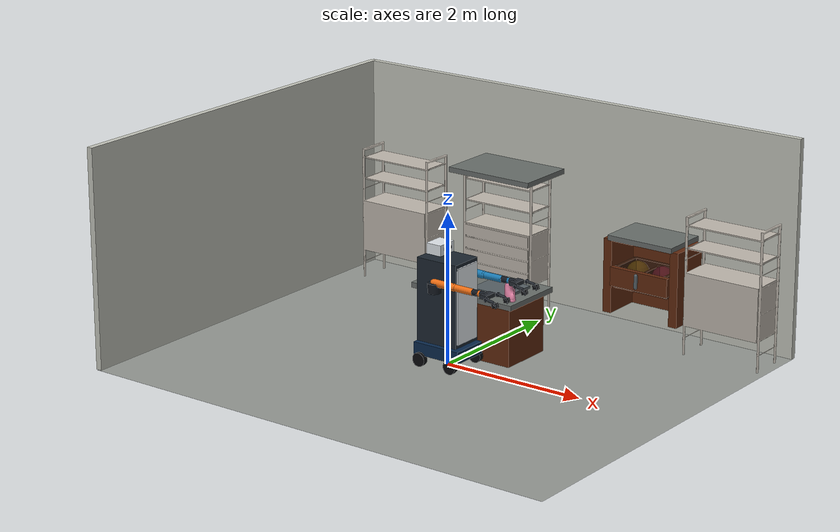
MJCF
<mujoco model="hwr_kitchen_v1">
  <compiler angle="radian" autolimits="true" inertiafromgeom="true" meshdir="../../household_v1" texturedir="../../household_v1"/>
  <option timestep="0.002" gravity="0 0 -9.81" integrator="implicitfast"><flag multiccd="enable"/></option>
  <size memory="160M"/>
  <visual>
    <global offwidth="960" offheight="640"/>
    <quality shadowsize="4096"/>
    <headlight ambient="0.20 0.20 0.19" diffuse="0.52 0.51 0.48" specular="0.22 0.22 0.22"/>
  </visual>
  <asset>
    <include file="../common/robot_assets.xml"/>
    <texture name="kitchen_floor_tex" type="2d" builtin="checker" width="1024" height="1024" rgb1="0.74 0.73 0.68" rgb2="0.42 0.46 0.47" mark="edge" markrgb="0.18 0.19 0.19"/>
    <texture name="kitchen_wall_tex" type="2d" builtin="checker" width="512" height="512" rgb1="0.84 0.82 0.75" rgb2="0.70 0.73 0.72"/>
    <texture name="counter_tex" type="2d" builtin="gradient" width="512" height="512" rgb1="0.65 0.66 0.63" rgb2="0.17 0.20 0.21" mark="random" markrgb="0.88 0.86 0.79"/>
    <material name="kitchen_floor" texture="kitchen_floor_tex" texrepeat="18 14" reflectance="0.12" roughness="0.50"/>
    <material name="kitchen_wall" texture="kitchen_wall_tex" texrepeat="9 7" roughness="0.82"/>
    <material name="counter_mat" texture="counter_tex" texrepeat="4 2" reflectance="0.18" roughness="0.30"/>
    <material name="drawer_wood" rgba="0.38 0.16 0.055 1" roughness="0.46"/>
    <material name="drawer_inside" rgba="0.22 0.10 0.035 1" roughness="0.60"/>
    <material name="steel" rgba="0.34 0.38 0.40 1" metallic="0.82" roughness="0.22"/>
    <mesh name="kitchen_cabinet_mesh" file="kitchen_cabinet/kitchen_cabinet.obj"/>
    <texture name="kitchen_cabinet_tex" type="2d" file="kitchen_cabinet/drawer_cabinet.png"/>
    <material name="kitchen_cabinet_mat" texture="kitchen_cabinet_tex" roughness="0.49"/>
    <mesh name="cleaner_yellow_mesh" file="cleaner_yellow/cleaner_yellow.obj"/>
    <texture name="cleaner_yellow_tex" type="2d" file="cleaner_yellow/multi_cleaner_bottle.png"/>
    <material name="cleaner_yellow_mat" texture="cleaner_yellow_tex" roughness="0.40"/>
    <mesh name="cleaner_pink_mesh" file="cleaner_pink/cleaner_pink.obj"/>
    <texture name="cleaner_pink_tex" type="2d" file="cleaner_pink/all_purpose_cleaner.png"/>
    <material name="cleaner_pink_mat" texture="cleaner_pink_tex" roughness="0.38"/>
  </asset>
  <default><include file="../common/robot_defaults.xml"/></default>
  <worldbody>
    <geom name="floor" type="plane" size="3.4 2.8 0.1" material="kitchen_floor" friction="0.92 0.01 0.001"/>
    <geom name="wall_north" type="box" pos="0 2.78 1.45" size="3.4 0.04 1.45" material="kitchen_wall"/>
    <geom name="wall_west" type="box" pos="-3.38 0 1.45" size="0.04 2.8 1.45" material="kitchen_wall"/>
    <light name="kitchen_key" pos="0 -0.4 3.7" dir="0 0.2 -1" directional="true" castshadow="true" diffuse="0.86 0.84 0.77"/>
    <light name="kitchen_window" pos="-2.8 -1.6 2.3" dir="0.7 0.5 -0.5" directional="true" castshadow="true" diffuse="0.45 0.63 0.83"/>
    <light name="kitchen_task" pos="1.9 1.4 2.35" diffuse="0.82 0.68 0.48" castshadow="true"/>
    <camera name="third_person" pos="5.1 -5.4 3.8" xyaxes="0.727 0.687 0 -0.362 0.383 0.850" fovy="46"/>
    <camera name="room_overview" pos="0 0 6.5" xyaxes="1 0 0 0 1 0" fovy="54"/>
    <include file="../common/robot_body.xml"/>
    <body name="cabinet_main" pos="2.75 2.28 0" euler="0 0 3.14159">
      <geom name="cabinet_main_visual" type="mesh" mesh="kitchen_cabinet_mesh" material="kitchen_cabinet_mat" contype="0" conaffinity="0" group="1"/>
      <geom name="cabinet_main_collision" type="box" pos="0 0 0.90" size="0.54 0.22 0.90" rgba="0 0 0 0" group="3"/>
    </body>
    <body name="cabinet_left" pos="-2.45 2.28 0" euler="0 0 3.14159">
      <geom name="cabinet_left_visual" type="mesh" mesh="kitchen_cabinet_mesh" material="kitchen_cabinet_mat" contype="0" conaffinity="0" group="1"/>
      <geom name="cabinet_left_collision" type="box" pos="0 0 0.90" size="0.54 0.22 0.90" rgba="0 0 0 0" group="3"/>
    </body>
    <body name="counter_bank" pos="-0.75 2.32 0">
      <geom name="counter_bank_visual" type="mesh" mesh="kitchen_cabinet_mesh" material="kitchen_cabinet_mat" contype="0" conaffinity="0" group="1"/>
      <geom name="counter_bank_collision" type="box" pos="0 0 0.90" size="0.54 0.22 0.90" rgba="0 0 0 0" group="3"/>
      <geom name="counter_worktop" type="box" pos="0 -0.02 1.875" size="0.64 0.42 0.035" material="counter_mat"/>
    </body>
    <body name="island" pos="0.00 0.72 0">
      <geom name="island_base" type="box" pos="0 0 0.40" size="0.70 0.38 0.40" material="drawer_wood"/>
      <geom name="island_worktop" type="box" pos="0 0 0.825" size="0.78 0.46 0.035" material="counter_mat"/>
      <geom name="island_sink" type="box" pos="0.30 0 0.875" size="0.28 0.25 0.02" material="steel"/>
    </body>
    <body name="kitchen_drawer_frame" pos="1.55 2.32 0">
      <geom name="drawer_frame_left" type="box" pos="-0.50 0 0.84" size="0.06 0.29 0.50" material="drawer_wood"/>
      <geom name="drawer_frame_right" type="box" pos="0.50 0 0.84" size="0.06 0.29 0.50" material="drawer_wood"/>
      <geom name="drawer_frame_top" type="box" pos="0 0 1.37" size="0.48 0.33 0.035" material="counter_mat"/>
      <geom name="drawer_frame_back" type="box" pos="0 0.27 0.84" size="0.48 0.035 0.50" material="drawer_wood"/>
      <body name="kitchen_drawer" pos="0 0 0.86">
        <joint name="kitchen_drawer_slide" type="slide" axis="0 -1 0" range="0 0.42" damping="15" frictionloss="4.0"/>
        <geom name="drawer_bottom" type="box" pos="0 -0.04 -0.13" size="0.39 0.25 0.025" material="drawer_inside"/>
        <geom name="drawer_front" type="box" pos="0 -0.30 0" size="0.43 0.035 0.125" material="drawer_wood"/>
        <geom name="drawer_back" type="box" pos="0 0.18 -0.02" size="0.39 0.025 0.15" material="drawer_inside"/>
        <geom name="drawer_left" type="box" pos="-0.37 -0.04 -0.02" size="0.025 0.22 0.15" material="drawer_inside"/>
        <geom name="drawer_right" type="box" pos="0.37 -0.04 -0.02" size="0.025 0.22 0.15" material="drawer_inside"/>
        <geom name="drawer_divider" type="box" pos="0 -0.04 -0.03" size="0.018 0.21 0.12" material="drawer_inside"/>
        <geom name="drawer_handle_visual" type="capsule" fromto="0 -0.39 -0.06 0 -0.39 0.10" size="0.025" material="steel" contype="0" conaffinity="0" group="1"/>
        <geom name="drawer_handle" type="capsule" fromto="0 -0.39 -0.06 0 -0.39 0.10" size="0.040" friction="2.4 0.04 0.004" rgba="0 0 0 0" group="3"/>
        <site name="yellow_target_volume" pos="-0.19 -0.04 0.02" size="0.15 0.17 0.12" rgba="1 0.8 0.1 0.09"/>
        <site name="pink_target_volume" pos="0.19 -0.04 0.02" size="0.15 0.17 0.12" rgba="1 0.2 0.5 0.09"/>
      </body>
    </body>
    <body name="cleaner_yellow" pos="-0.42 0.42 0.86">
      <freejoint name="cleaner_yellow_free"/>
      <geom name="cleaner_yellow_visual" type="mesh" mesh="cleaner_yellow_mesh" material="cleaner_yellow_mat" mass="0" contype="0" conaffinity="0" group="1"/>
      <geom name="cleaner_yellow_collision" type="cylinder" pos="0 0 0.120" size="0.043 0.120" mass="0.32" friction="1.35 0.02 0.002" rgba="0 0 0 0" group="3"/>
    </body>
    <body name="cleaner_pink" pos="0.66 0.42 0.86">
      <freejoint name="cleaner_pink_free"/>
      <geom name="cleaner_pink_visual" type="mesh" mesh="cleaner_pink_mesh" material="cleaner_pink_mat" mass="0" contype="0" conaffinity="0" group="1"/>
      <geom name="cleaner_pink_collision" type="box" pos="0 0 0.120" size="0.064 0.047 0.120" mass="0.48" friction="1.30 0.02 0.002" rgba="0 0 0 0" group="3"/>
    </body>
  </worldbody>
  <contact>
    <include file="../common/robot_contacts.xml"/>
    <pair geom1="right_gripper_left_pad" geom2="cleaner_yellow_collision" condim="4" friction="3 3 0.04 0.004 0.004" solref="0.001 1" solimp="0.99 0.999 0.0001"/>
    <pair geom1="right_gripper_right_pad" geom2="cleaner_yellow_collision" condim="4" friction="3 3 0.04 0.004 0.004" solref="0.001 1" solimp="0.99 0.999 0.0001"/>
    <pair geom1="right_gripper_left_pad" geom2="cleaner_pink_collision" condim="4" friction="3 3 0.04 0.004 0.004" solref="0.001 1" solimp="0.99 0.999 0.0001"/>
    <pair geom1="right_gripper_right_pad" geom2="cleaner_pink_collision" condim="4" friction="3 3 0.04 0.004 0.004" solref="0.001 1" solimp="0.99 0.999 0.0001"/>
    <pair geom1="right_gripper_left_pad" geom2="drawer_handle" condim="4" friction="3 3 0.04 0.004 0.004" solref="0.001 1" solimp="0.99 0.999 0.0001"/>
    <pair geom1="right_gripper_right_pad" geom2="drawer_handle" condim="4" friction="3 3 0.04 0.004 0.004" solref="0.001 1" solimp="0.99 0.999 0.0001"/>
  </contact>
  <actuator><include file="../common/robot_actuators.xml"/></actuator>
  <sensor><include file="../common/robot_sensors.xml"/></sensor>
</mujoco>

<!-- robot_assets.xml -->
<mujocoinclude>
  <material name="chassis_material" rgba="0.035 0.16 0.30 1" metallic="0.3" roughness="0.28"/>
  <material name="body_material" rgba="0.11 0.15 0.19 1" metallic="0.22" roughness="0.34"/>
  <material name="panel_material" rgba="0.92 0.94 0.96 1" metallic="0.08" roughness="0.28"/>
  <material name="arm_material" rgba="0.93 0.43 0.08 1" metallic="0.18" roughness="0.28"/>
  <material name="arm_secondary_material" rgba="0.10 0.48 0.70 1" metallic="0.18" roughness="0.28"/>
  <material name="joint_material" rgba="0.08 0.10 0.13 1" metallic="0.65" roughness="0.24"/>
  <material name="gripper_material" rgba="0.15 0.17 0.20 1" metallic="0.28" roughness="0.48"/>
  <material name="gripper_pad_material" rgba="0.035 0.045 0.055 1" metallic="0.02" roughness="0.86"/>
  <material name="wheel_material" rgba="0.035 0.04 0.05 1" metallic="0.05" roughness="0.72"/>
  <material name="camera_material" rgba="0.88 0.90 0.92 1" metallic="0.16" roughness="0.26"/>
  <material name="camera_lens_material" rgba="0.015 0.035 0.06 1" metallic="0.38" roughness="0.12"/>
</mujocoinclude>

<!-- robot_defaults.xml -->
<mujocoinclude>
  <joint damping="1.0" armature="0.02" frictionloss="0.05"/>
  <geom condim="4" friction="0.9 0.01 0.001" solref="0.006 1" solimp="0.9 0.95 0.001"/>
  <default class="arm_joint">
    <joint damping="2.0" armature="0.05"/>
  </default>
  <default class="finger_joint">
    <joint damping="3.0" armature="0.01"/>
  </default>
  <default class="finger_pad">
    <geom condim="4" friction="3.0 0.04 0.004" solref="0.004 1"/>
  </default>
</mujocoinclude>

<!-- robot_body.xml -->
<mujocoinclude>
  <body name="robot_base" pos="0 0 0.22">
    <freejoint name="base_free"/>
    <geom name="chassis_collision" type="box" size="0.34 0.26 0.08" density="400"
          material="chassis_material"/>
    <geom name="body_box_collision" type="box" pos="-0.01 0 0.65" size="0.30 0.23 0.55"
          density="65" material="body_material"/>
    <geom name="body_front_panel" type="box" pos="0.295 0 0.65" size="0.012 0.20 0.50"
          mass="0.05" contype="0" conaffinity="0" material="panel_material"/>
    <geom name="bumper_front" type="capsule" fromto="0.34 -0.21 0 0.34 0.21 0" size="0.035"
          density="300" material="joint_material"/>
    <site name="base_imu" pos="0 0 0.12" size="0.012" rgba="0 1 0 0"/>

    <body name="top_camera_head" pos="-0.12 0 1.31">
      <geom name="camera_head_pedestal" type="box" pos="0 0 -0.09" size="0.045 0.050 0.040"
            density="220" material="joint_material"/>
      <geom name="camera_head_housing" type="box" size="0.11 0.14 0.07" density="180"
            material="camera_material"/>
      <geom name="camera_rgb_lens" type="cylinder" pos="0.118 -0.045 0.01" size="0.026 0.012"
            quat="0.707107 0 0.707107 0" mass="0.02" contype="0" conaffinity="0"
            material="camera_lens_material"/>
      <geom name="camera_depth_lens" type="cylinder" pos="0.118 0.045 0.01" size="0.026 0.012"
            quat="0.707107 0 0.707107 0" mass="0.02" contype="0" conaffinity="0"
            material="camera_lens_material"/>
      <camera name="head_rgb" pos="0.13 -0.045 0.01" xyaxes="0 -1 0 0.16 0 0.987" fovy="66"/>
      <camera name="head_depth" pos="0.13 0.045 0.01" xyaxes="0 -1 0 0.16 0 0.987" fovy="66"/>
    </body>

    <body name="wheel_front_left" pos="0.24 0.27 -0.13">
      <joint name="wheel_front_left_joint" type="hinge" axis="0 1 0" limited="false" damping="0.15"/>
      <geom name="wheel_front_left_geom" type="cylinder" size="0.09 0.035"
            quat="0.707107 0.707107 0 0" density="450" material="wheel_material"
            friction="1.3 0.003 0.0002"/>
    </body>
    <body name="wheel_rear_left" pos="-0.24 0.27 -0.13">
      <joint name="wheel_rear_left_joint" type="hinge" axis="0 1 0" limited="false" damping="0.15"/>
      <geom name="wheel_rear_left_geom" type="cylinder" size="0.09 0.035"
            quat="0.707107 0.707107 0 0" density="450" material="wheel_material"
            friction="1.3 0.003 0.0002"/>
    </body>
    <body name="wheel_front_right" pos="0.24 -0.27 -0.13">
      <joint name="wheel_front_right_joint" type="hinge" axis="0 1 0" limited="false" damping="0.15"/>
      <geom name="wheel_front_right_geom" type="cylinder" size="0.09 0.035"
            quat="0.707107 0.707107 0 0" density="450" material="wheel_material"
            friction="1.3 0.003 0.0002"/>
    </body>
    <body name="wheel_rear_right" pos="-0.24 -0.27 -0.13">
      <joint name="wheel_rear_right_joint" type="hinge" axis="0 1 0" limited="false" damping="0.15"/>
      <geom name="wheel_rear_right_geom" type="cylinder" size="0.09 0.035"
            quat="0.707107 0.707107 0 0" density="450" material="wheel_material"
            friction="1.3 0.003 0.0002"/>
    </body>

    <body name="right_shoulder_pan_link" pos="0.02 -0.31 0.82" gravcomp="1">
      <joint name="right_arm_joint_1" class="arm_joint" type="hinge" axis="0 0 1" range="-3.05 3.05"/>
      <geom type="cylinder" size="0.085 0.065" pos="0 0 0.065" density="620" material="joint_material"/>
      <body name="right_upper_arm_link" pos="0 0 0.13" gravcomp="1">
        <joint name="right_arm_joint_2" class="arm_joint" type="hinge" axis="0 1 0" range="-1.75 1.45"/>
        <geom type="capsule" fromto="0 0 0 0.31 0 0" size="0.050" density="560" material="arm_material"/>
        <body name="right_forearm_link" pos="0.31 0 0" gravcomp="1">
          <joint name="right_arm_joint_3" class="arm_joint" type="hinge" axis="0 1 0" range="-2.55 2.55"/>
          <geom type="capsule" fromto="0 0 0 0.27 0 0" size="0.044" density="520" material="arm_material"/>
          <body name="right_wrist_roll_link" pos="0.27 0 0" gravcomp="1">
            <joint name="right_arm_joint_4" class="arm_joint" type="hinge" axis="1 0 0" range="-3.05 3.05"/>
            <geom type="capsule" fromto="0 0 0 0.09 0 0" size="0.040" density="500" material="joint_material"/>
            <body name="right_wrist_pitch_link" pos="0.09 0 0" gravcomp="1">
              <joint name="right_arm_joint_5" class="arm_joint" type="hinge" axis="0 1 0" range="-2.10 2.10"/>
              <geom type="capsule" fromto="0 0 0 0.08 0 0" size="0.037" density="480" material="arm_material"/>
              <body name="right_wrist_yaw_link" pos="0.08 0 0" gravcomp="1">
                <joint name="right_arm_joint_6" class="arm_joint" type="hinge" axis="1 0 0" range="-3.05 3.05"/>
                <geom type="cylinder" size="0.041 0.035" quat="0.707107 0 0.707107 0"
                      density="470" material="joint_material"/>
                <body name="right_gripper_palm" pos="0.065 0 0" gravcomp="1">
                  <geom name="right_gripper_palm_shell" type="box" size="0.050 0.090 0.026"
                        density="470" material="gripper_material"/>
                  <geom name="right_gripper_wrist_adapter" type="cylinder" pos="-0.035 0 0"
                        size="0.038 0.025" quat="0.707107 0 0.707107 0"
                        density="420" material="joint_material"/>
                  <camera name="wrist_rgb" pos="0.012 0 0.060" xyaxes="0 -1 0 0 0 1" fovy="72"/>
                  <site name="right_grasp_center" pos="0.190 0 -0.045" size="0.012" rgba="0 1 0 0"/>
                  <body name="right_gripper_left_finger" pos="0.070 0.122 -0.005" gravcomp="1">
                    <joint name="right_gripper_left_finger_joint" class="finger_joint" type="slide"
                           axis="0 -1 0" range="0 0.095"/>
                    <geom name="right_gripper_left_knuckle" type="cylinder" size="0.026 0.018"
                          quat="0.707107 0.707107 0 0" density="390"
                          material="joint_material"/>
                    <geom name="right_gripper_left_proximal" type="capsule"
                          fromto="0 0 0 0.100 0 -0.012" size="0.018" density="360"
                          material="gripper_material"/>
                    <geom name="right_gripper_left_distal" type="capsule"
                          fromto="0.100 0 -0.012 0.145 0 -0.047" size="0.016" density="340"
                          material="gripper_material"/>
                    <geom name="right_gripper_left_tip" type="capsule"
                          fromto="0.145 0 -0.047 0.145 0 -0.075" size="0.014" density="330"
                          material="gripper_material"/>
                    <geom name="right_gripper_left_pad" class="finger_pad" type="box"
                          size="0.045 0.012 0.030" pos="0.133 0 -0.045" euler="0 -0.30 0"
                          density="400" material="gripper_pad_material"/>
                  </body>
                  <body name="right_gripper_right_finger" pos="0.070 -0.122 -0.005" gravcomp="1">
                    <joint name="right_gripper_right_finger_joint" class="finger_joint" type="slide"
                           axis="0 1 0" range="0 0.095"/>
                    <geom name="right_gripper_right_knuckle" type="cylinder" size="0.026 0.018"
                          quat="0.707107 0.707107 0 0" density="390"
                          material="joint_material"/>
                    <geom name="right_gripper_right_proximal" type="capsule"
                          fromto="0 0 0 0.100 0 -0.012" size="0.018" density="360"
                          material="gripper_material"/>
                    <geom name="right_gripper_right_distal" type="capsule"
                          fromto="0.100 0 -0.012 0.145 0 -0.047" size="0.016" density="340"
                          material="gripper_material"/>
                    <geom name="right_gripper_right_tip" type="capsule"
                          fromto="0.145 0 -0.047 0.145 0 -0.075" size="0.014" density="330"
                          material="gripper_material"/>
                    <geom name="right_gripper_right_pad" class="finger_pad" type="box"
                          size="0.045 0.012 0.030" pos="0.133 0 -0.045" euler="0 -0.30 0"
                          density="400" material="gripper_pad_material"/>
                  </body>
                </body>
              </body>
            </body>
          </body>
        </body>
      </body>
    </body>

    <body name="left_shoulder_pan_link" pos="0.02 0.31 0.82" gravcomp="1">
      <joint name="left_arm_joint_1" class="arm_joint" type="hinge" axis="0 0 1" range="-3.05 3.05"/>
      <geom type="cylinder" size="0.085 0.065" pos="0 0 0.065" density="620" material="joint_material"/>
      <body name="left_upper_arm_link" pos="0 0 0.13" gravcomp="1">
        <joint name="left_arm_joint_2" class="arm_joint" type="hinge" axis="0 1 0" range="-1.75 1.45"/>
        <geom type="capsule" fromto="0 0 0 0.31 0 0" size="0.050" density="560" material="arm_secondary_material"/>
        <body name="left_forearm_link" pos="0.31 0 0" gravcomp="1">
          <joint name="left_arm_joint_3" class="arm_joint" type="hinge" axis="0 1 0" range="-2.55 2.55"/>
          <geom type="capsule" fromto="0 0 0 0.27 0 0" size="0.044" density="520" material="arm_secondary_material"/>
          <body name="left_wrist_roll_link" pos="0.27 0 0" gravcomp="1">
            <joint name="left_arm_joint_4" class="arm_joint" type="hinge" axis="1 0 0" range="-3.05 3.05"/>
            <geom type="capsule" fromto="0 0 0 0.09 0 0" size="0.040" density="500" material="joint_material"/>
            <body name="left_wrist_pitch_link" pos="0.09 0 0" gravcomp="1">
              <joint name="left_arm_joint_5" class="arm_joint" type="hinge" axis="0 1 0" range="-2.10 2.10"/>
              <geom type="capsule" fromto="0 0 0 0.08 0 0" size="0.037" density="480" material="arm_secondary_material"/>
              <body name="left_wrist_yaw_link" pos="0.08 0 0" gravcomp="1">
                <joint name="left_arm_joint_6" class="arm_joint" type="hinge" axis="1 0 0" range="-3.05 3.05"/>
                <geom type="cylinder" size="0.041 0.035" quat="0.707107 0 0.707107 0"
                      density="470" material="joint_material"/>
                <body name="left_gripper_palm" pos="0.065 0 0" gravcomp="1">
                  <geom name="left_gripper_palm_shell" type="box" size="0.050 0.090 0.026"
                        density="470" material="gripper_material"/>
                  <geom name="left_gripper_wrist_adapter" type="cylinder" pos="-0.035 0 0"
                        size="0.038 0.025" quat="0.707107 0 0.707107 0"
                        density="420" material="joint_material"/>
                  <camera name="left_wrist_rgb" pos="0.012 0 0.060" xyaxes="0 -1 0 0 0 1" fovy="72"/>
                  <site name="left_grasp_center" pos="0.190 0 -0.045" size="0.012" rgba="0 1 0 0"/>
                  <body name="left_gripper_left_finger" pos="0.070 0.122 -0.005" gravcomp="1">
                    <joint name="left_gripper_left_finger_joint" class="finger_joint" type="slide"
                           axis="0 -1 0" range="0 0.095"/>
                    <geom name="left_gripper_left_knuckle" type="cylinder" size="0.026 0.018"
                          quat="0.707107 0.707107 0 0" density="390"
                          material="joint_material"/>
                    <geom name="left_gripper_left_proximal" type="capsule"
                          fromto="0 0 0 0.100 0 -0.012" size="0.018" density="360"
                          material="gripper_material"/>
                    <geom name="left_gripper_left_distal" type="capsule"
                          fromto="0.100 0 -0.012 0.145 0 -0.047" size="0.016" density="340"
                          material="gripper_material"/>
                    <geom name="left_gripper_left_tip" type="capsule"
                          fromto="0.145 0 -0.047 0.145 0 -0.075" size="0.014" density="330"
                          material="gripper_material"/>
                    <geom name="left_gripper_left_pad" class="finger_pad" type="box"
                          size="0.045 0.012 0.030" pos="0.133 0 -0.045" euler="0 -0.30 0"
                          density="400" material="gripper_pad_material"/>
                  </body>
                  <body name="left_gripper_right_finger" pos="0.070 -0.122 -0.005" gravcomp="1">
                    <joint name="left_gripper_right_finger_joint" class="finger_joint" type="slide"
                           axis="0 1 0" range="0 0.095"/>
                    <geom name="left_gripper_right_knuckle" type="cylinder" size="0.026 0.018"
                          quat="0.707107 0.707107 0 0" density="390"
                          material="joint_material"/>
                    <geom name="left_gripper_right_proximal" type="capsule"
                          fromto="0 0 0 0.100 0 -0.012" size="0.018" density="360"
                          material="gripper_material"/>
                    <geom name="left_gripper_right_distal" type="capsule"
                          fromto="0.100 0 -0.012 0.145 0 -0.047" size="0.016" density="340"
                          material="gripper_material"/>
                    <geom name="left_gripper_right_tip" type="capsule"
                          fromto="0.145 0 -0.047 0.145 0 -0.075" size="0.014" density="330"
                          material="gripper_material"/>
                    <geom name="left_gripper_right_pad" class="finger_pad" type="box"
                          size="0.045 0.012 0.030" pos="0.133 0 -0.045" euler="0 -0.30 0"
                          density="400" material="gripper_pad_material"/>
                  </body>
                </body>
              </body>
            </body>
          </body>
        </body>
      </body>
    </body>
  </body>
</mujocoinclude>

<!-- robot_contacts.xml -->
<mujocoinclude>
  <exclude body1="robot_base" body2="right_shoulder_pan_link"/>
  <exclude body1="right_shoulder_pan_link" body2="right_upper_arm_link"/>
  <exclude body1="right_upper_arm_link" body2="right_forearm_link"/>
  <exclude body1="right_forearm_link" body2="right_wrist_roll_link"/>
  <exclude body1="right_wrist_roll_link" body2="right_wrist_pitch_link"/>
  <exclude body1="right_wrist_pitch_link" body2="right_wrist_yaw_link"/>
  <exclude body1="right_wrist_yaw_link" body2="right_gripper_palm"/>
  <exclude body1="right_gripper_palm" body2="right_gripper_left_finger"/>
  <exclude body1="right_gripper_palm" body2="right_gripper_right_finger"/>
  <exclude body1="robot_base" body2="left_shoulder_pan_link"/>
  <exclude body1="left_shoulder_pan_link" body2="left_upper_arm_link"/>
  <exclude body1="left_upper_arm_link" body2="left_forearm_link"/>
  <exclude body1="left_forearm_link" body2="left_wrist_roll_link"/>
  <exclude body1="left_wrist_roll_link" body2="left_wrist_pitch_link"/>
  <exclude body1="left_wrist_pitch_link" body2="left_wrist_yaw_link"/>
  <exclude body1="left_wrist_yaw_link" body2="left_gripper_palm"/>
  <exclude body1="left_gripper_palm" body2="left_gripper_left_finger"/>
  <exclude body1="left_gripper_palm" body2="left_gripper_right_finger"/>
</mujocoinclude>

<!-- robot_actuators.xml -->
<mujocoinclude>
  <velocity name="wheel_front_left_velocity" joint="wheel_front_left_joint" kv="18" forcerange="-30 30"/>
  <velocity name="wheel_rear_left_velocity" joint="wheel_rear_left_joint" kv="18" forcerange="-30 30"/>
  <velocity name="wheel_front_right_velocity" joint="wheel_front_right_joint" kv="18" forcerange="-30 30"/>
  <velocity name="wheel_rear_right_velocity" joint="wheel_rear_right_joint" kv="18" forcerange="-30 30"/>
  <position name="right_arm_joint_1_position" joint="right_arm_joint_1" kp="180" kv="24" forcerange="-75 75"/>
  <position name="right_arm_joint_2_position" joint="right_arm_joint_2" kp="180" kv="24" forcerange="-75 75"/>
  <position name="right_arm_joint_3_position" joint="right_arm_joint_3" kp="160" kv="20" forcerange="-60 60"/>
  <position name="right_arm_joint_4_position" joint="right_arm_joint_4" kp="100" kv="14" forcerange="-35 35"/>
  <position name="right_arm_joint_5_position" joint="right_arm_joint_5" kp="90" kv="12" forcerange="-30 30"/>
  <position name="right_arm_joint_6_position" joint="right_arm_joint_6" kp="70" kv="10" forcerange="-22 22"/>
  <position name="left_arm_joint_1_position" joint="left_arm_joint_1" kp="180" kv="24" forcerange="-75 75"/>
  <position name="left_arm_joint_2_position" joint="left_arm_joint_2" kp="180" kv="24" forcerange="-75 75"/>
  <position name="left_arm_joint_3_position" joint="left_arm_joint_3" kp="160" kv="20" forcerange="-60 60"/>
  <position name="left_arm_joint_4_position" joint="left_arm_joint_4" kp="100" kv="14" forcerange="-35 35"/>
  <position name="left_arm_joint_5_position" joint="left_arm_joint_5" kp="90" kv="12" forcerange="-30 30"/>
  <position name="left_arm_joint_6_position" joint="left_arm_joint_6" kp="70" kv="10" forcerange="-22 22"/>
  <position name="right_gripper_left_finger_position" joint="right_gripper_left_finger_joint"
            kp="260" kv="14" forcerange="-35 35"/>
  <position name="right_gripper_right_finger_position" joint="right_gripper_right_finger_joint"
            kp="260" kv="14" forcerange="-35 35"/>
  <position name="left_gripper_left_finger_position" joint="left_gripper_left_finger_joint"
            kp="260" kv="14" forcerange="-35 35"/>
  <position name="left_gripper_right_finger_position" joint="left_gripper_right_finger_joint"
            kp="260" kv="14" forcerange="-35 35"/>
</mujocoinclude>

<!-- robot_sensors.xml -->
<mujocoinclude>
  <gyro name="base_gyro" site="base_imu"/>
  <accelerometer name="base_accelerometer" site="base_imu"/>
</mujocoinclude>
